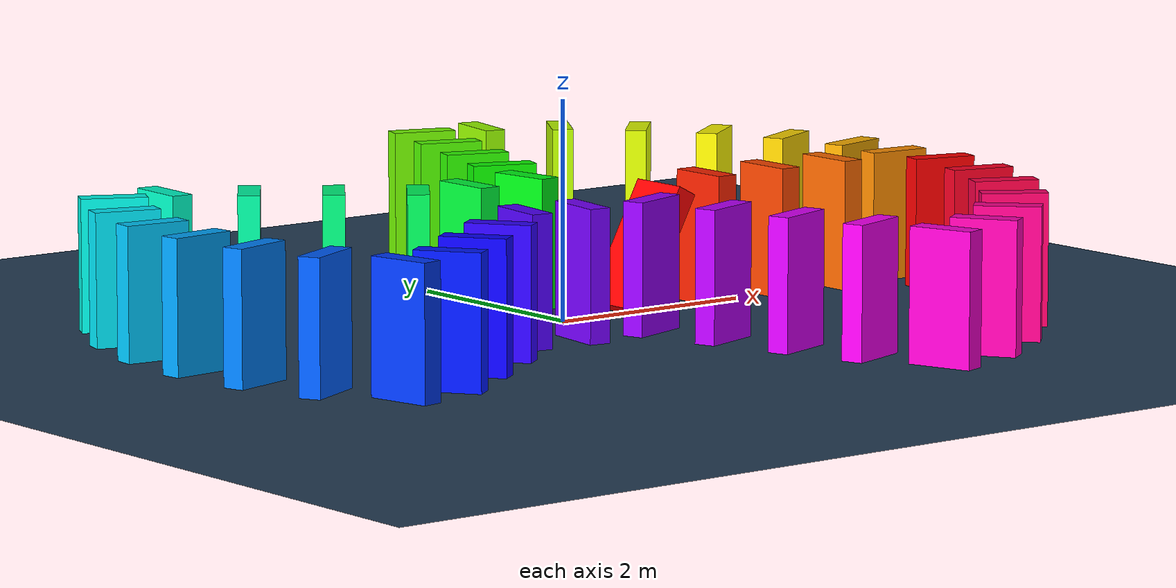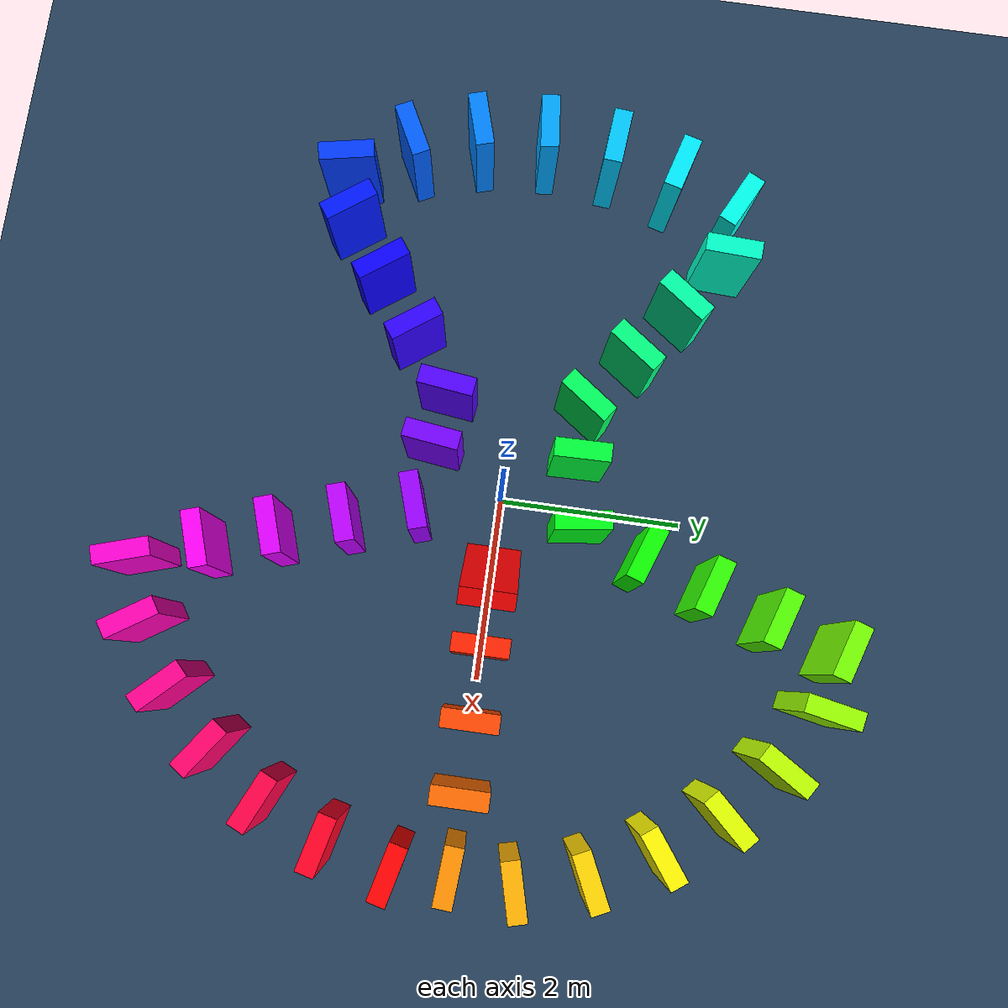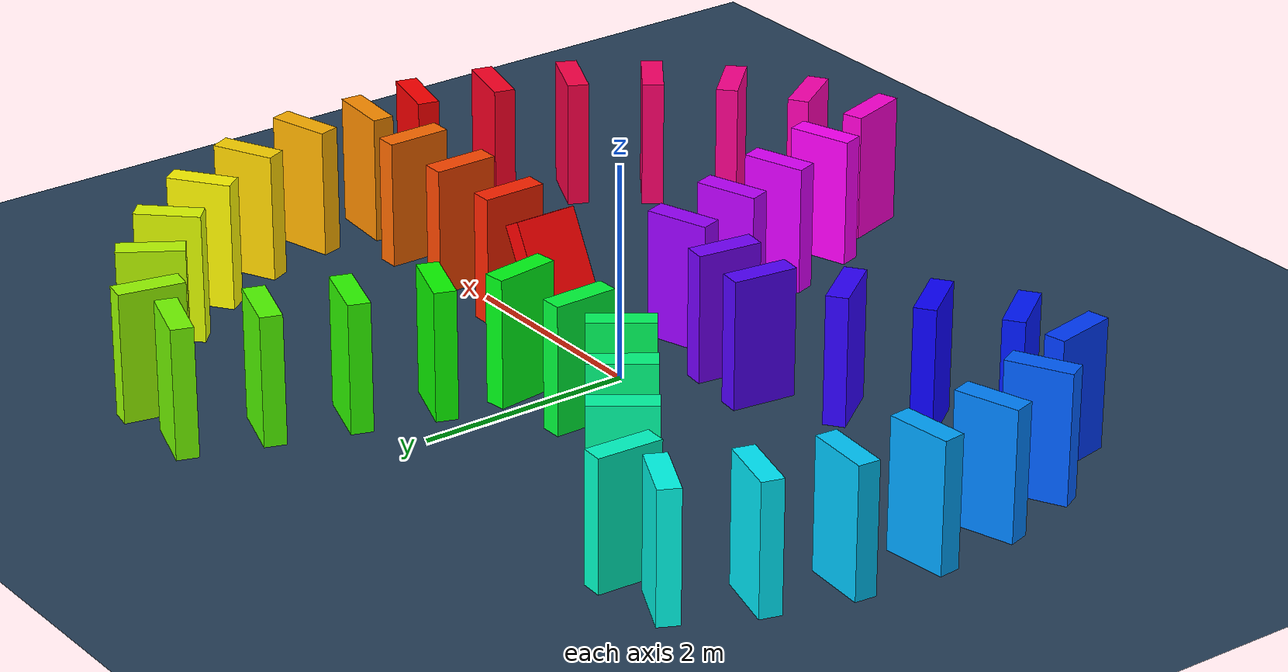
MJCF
<mujoco>
  <visual>
    <headlight diffuse="0.6 0.6 0.6" ambient="0.1 0.1 0.1" specular="0 0 0"/>
    <rgba haze="0.15 0.25 0.35 1"/>
    <global azimuth="120" elevation="-20"/>
  </visual>
  <asset>
    <texture type="skybox" builtin="gradient" rgb1="0.3 0.5 0.7" rgb2="0 0 0" width="512" height="3072"/>
    <texture type="2d" name="groundplane" builtin="checker" mark="edge" rgb1="0.2 0.3 0.4" rgb2="0.1 0.2 0.3" markrgb="0.8 0.8 0.8" width="300" height="300"/>
    <material name="groundplane" texture="groundplane" texuniform="true" texrepeat="5 5" reflectance="0.2"/>
  </asset>
  <worldbody>
    <light pos="0 0 1.5" dir="0 0 -1" directional="true"/>
    <geom name="floor" size="0 0 0.05" type="plane" material="groundplane"/>
    <body name="trigger" pos="0.9000 0.0000 0.5767" euler="0 28.0 0.0">
      <geom type="box" size="0.1000 0.3000 0.6000" rgba="1.000 0.000 0.000 1"/>
      <freejoint/>
    </body>
    <body name="domino_001" pos="1.6500 0.0000 0.6000" euler="0 0.0 0.0">
      <geom type="box" size="0.1000 0.3000 0.6000" rgba="1.000 0.140 0.000 1"/>
      <freejoint/>
    </body>
    <body name="domino_002" pos="2.4000 0.0000 0.6000" euler="0 0.0 0.0">
      <geom type="box" size="0.1000 0.3000 0.6000" rgba="1.000 0.279 0.000 1"/>
      <freejoint/>
    </body>
    <body name="domino_003" pos="3.1500 0.0000 0.6000" euler="0 0.0 0.0">
      <geom type="box" size="0.1000 0.3000 0.6000" rgba="1.000 0.419 0.000 1"/>
      <freejoint/>
    </body>
    <body name="domino_004" pos="3.9000 0.0000 0.6000" euler="0 0.0 85.8">
      <geom type="box" size="0.1000 0.3000 0.6000" rgba="1.000 0.558 0.000 1"/>
      <freejoint/>
    </body>
    <body name="domino_005" pos="3.9473 0.6471 0.6000" euler="0 0.0 104.7">
      <geom type="box" size="0.1000 0.3000 0.6000" rgba="1.000 0.698 0.000 1"/>
      <freejoint/>
    </body>
    <body name="domino_006" pos="3.7575 1.3716 0.6000" euler="0 0.0 115.4">
      <geom type="box" size="0.1000 0.3000 0.6000" rgba="1.000 0.837 0.000 1"/>
      <freejoint/>
    </body>
    <body name="domino_007" pos="3.4360 2.0480 0.6000" euler="0 0.0 126.2">
      <geom type="box" size="0.1000 0.3000 0.6000" rgba="1.000 0.977 0.000 1"/>
      <freejoint/>
    </body>
    <body name="domino_008" pos="2.9940 2.6525 0.6000" euler="0 0.0 136.9">
      <geom type="box" size="0.1000 0.3000 0.6000" rgba="0.884 1.000 0.000 1"/>
      <freejoint/>
    </body>
    <body name="domino_009" pos="2.4471 3.1641 0.6000" euler="0 0.0 147.7">
      <geom type="box" size="0.1000 0.3000 0.6000" rgba="0.744 1.000 0.000 1"/>
      <freejoint/>
    </body>
    <body name="domino_010" pos="1.8144 3.5648 0.6000" euler="0 0.0 168.8">
      <geom type="box" size="0.1000 0.3000 0.6000" rgba="0.605 1.000 0.000 1"/>
      <freejoint/>
    </body>
    <body name="domino_011" pos="1.1979 3.6868 0.6000" euler="0 0.0 -108.0">
      <geom type="box" size="0.1000 0.3000 0.6000" rgba="0.465 1.000 0.000 1"/>
      <freejoint/>
    </body>
    <body name="domino_012" pos="0.9662 2.9735 0.6000" euler="0 0.0 -108.0">
      <geom type="box" size="0.1000 0.3000 0.6000" rgba="0.326 1.000 0.000 1"/>
      <freejoint/>
    </body>
    <body name="domino_013" pos="0.7344 2.2602 0.6000" euler="0 0.0 -108.0">
      <geom type="box" size="0.1000 0.3000 0.6000" rgba="0.186 1.000 0.000 1"/>
      <freejoint/>
    </body>
    <body name="domino_014" pos="0.5026 1.5469 0.6000" euler="0 0.0 -109.8">
      <geom type="box" size="0.1000 0.3000 0.6000" rgba="0.047 1.000 0.000 1"/>
      <freejoint/>
    </body>
    <body name="domino_015" pos="0.2557 0.8629 0.6000" euler="0 0.0 -172.6">
      <geom type="box" size="0.1000 0.3000 0.6000" rgba="0.000 1.000 0.093 1"/>
      <freejoint/>
    </body>
    <body name="domino_016" pos="-0.4668 0.7695 0.6000" euler="0 0.0 -179.0">
      <geom type="box" size="0.1000 0.3000 0.6000" rgba="0.000 1.000 0.232 1"/>
      <freejoint/>
    </body>
    <body name="domino_017" pos="-1.0456 0.7597 0.6000" euler="0 0.0 144.0">
      <geom type="box" size="0.1000 0.3000 0.6000" rgba="0.000 1.000 0.372 1"/>
      <freejoint/>
    </body>
    <body name="domino_018" pos="-1.6524 1.2005 0.6000" euler="0 0.0 144.0">
      <geom type="box" size="0.1000 0.3000 0.6000" rgba="0.000 1.000 0.511 1"/>
      <freejoint/>
    </body>
    <body name="domino_019" pos="-2.2592 1.6414 0.6000" euler="0 0.0 144.0">
      <geom type="box" size="0.1000 0.3000 0.6000" rgba="0.000 1.000 0.651 1"/>
      <freejoint/>
    </body>
    <body name="domino_020" pos="-2.8659 2.0822 0.6000" euler="0 0.0 177.2">
      <geom type="box" size="0.1000 0.3000 0.6000" rgba="0.000 1.000 0.790 1"/>
      <freejoint/>
    </body>
    <body name="domino_021" pos="-3.3992 2.1084 0.6000" euler="0 0.0 -116.4">
      <geom type="box" size="0.1000 0.3000 0.6000" rgba="0.000 1.000 0.930 1"/>
      <freejoint/>
    </body>
    <body name="domino_022" pos="-3.7326 1.4379 0.6000" euler="0 0.0 -105.7">
      <geom type="box" size="0.1000 0.3000 0.6000" rgba="0.000 0.931 1.000 1"/>
      <freejoint/>
    </body>
    <body name="domino_023" pos="-3.9352 0.7169 0.6000" euler="0 0.0 -95.0">
      <geom type="box" size="0.1000 0.3000 0.6000" rgba="0.000 0.791 1.000 1"/>
      <freejoint/>
    </body>
    <body name="domino_024" pos="-3.9999 -0.0292 0.6000" euler="0 0.0 -84.2">
      <geom type="box" size="0.1000 0.3000 0.6000" rgba="0.000 0.652 1.000 1"/>
      <freejoint/>
    </body>
    <body name="domino_025" pos="-3.9243 -0.7743 0.6000" euler="0 0.0 -73.5">
      <geom type="box" size="0.1000 0.3000 0.6000" rgba="0.000 0.512 1.000 1"/>
      <freejoint/>
    </body>
    <body name="domino_026" pos="-3.7112 -1.4922 0.6000" euler="0 0.0 -62.7">
      <geom type="box" size="0.1000 0.3000 0.6000" rgba="0.000 0.373 1.000 1"/>
      <freejoint/>
    </body>
    <body name="domino_027" pos="-3.3680 -2.1579 0.6000" euler="0 0.0 11.3">
      <geom type="box" size="0.1000 0.3000 0.6000" rgba="0.000 0.233 1.000 1"/>
      <freejoint/>
    </body>
    <body name="domino_028" pos="-2.8187 -2.0479 0.6000" euler="0 0.0 36.0">
      <geom type="box" size="0.1000 0.3000 0.6000" rgba="0.000 0.094 1.000 1"/>
      <freejoint/>
    </body>
    <body name="domino_029" pos="-2.2119 -1.6070 0.6000" euler="0 0.0 36.0">
      <geom type="box" size="0.1000 0.3000 0.6000" rgba="0.046 0.000 1.000 1"/>
      <freejoint/>
    </body>
    <body name="domino_030" pos="-1.6051 -1.1662 0.6000" euler="0 0.0 36.0">
      <geom type="box" size="0.1000 0.3000 0.6000" rgba="0.185 0.000 1.000 1"/>
      <freejoint/>
    </body>
    <body name="domino_031" pos="-0.9984 -0.7254 0.6000" euler="0 0.0 -7.1">
      <geom type="box" size="0.1000 0.3000 0.6000" rgba="0.325 0.000 1.000 1"/>
      <freejoint/>
    </body>
    <body name="domino_032" pos="-0.4159 -0.7982 0.6000" euler="0 0.0 -7.4">
      <geom type="box" size="0.1000 0.3000 0.6000" rgba="0.464 0.000 1.000 1"/>
      <freejoint/>
    </body>
    <body name="domino_033" pos="0.2889 -0.8892 0.6000" euler="0 0.0 -72.0">
      <geom type="box" size="0.1000 0.3000 0.6000" rgba="0.604 0.000 1.000 1"/>
      <freejoint/>
    </body>
    <body name="domino_034" pos="0.5207 -1.6025 0.6000" euler="0 0.0 -72.0">
      <geom type="box" size="0.1000 0.3000 0.6000" rgba="0.743 0.000 1.000 1"/>
      <freejoint/>
    </body>
    <body name="domino_035" pos="0.7524 -2.3158 0.6000" euler="0 0.0 -72.0">
      <geom type="box" size="0.1000 0.3000 0.6000" rgba="0.883 0.000 1.000 1"/>
      <freejoint/>
    </body>
    <body name="domino_036" pos="0.9842 -3.0291 0.6000" euler="0 0.0 -72.0">
      <geom type="box" size="0.1000 0.3000 0.6000" rgba="1.000 0.000 0.978 1"/>
      <freejoint/>
    </body>
    <body name="domino_037" pos="1.2160 -3.7424 0.6000" euler="0 0.0 17.5">
      <geom type="box" size="0.1000 0.3000 0.6000" rgba="1.000 0.000 0.838 1"/>
      <freejoint/>
    </body>
    <body name="domino_038" pos="1.8662 -3.5380 0.6000" euler="0 0.0 33.2">
      <geom type="box" size="0.1000 0.3000 0.6000" rgba="1.000 0.000 0.699 1"/>
      <freejoint/>
    </body>
    <body name="domino_039" pos="2.4930 -3.1281 0.6000" euler="0 0.0 43.9">
      <geom type="box" size="0.1000 0.3000 0.6000" rgba="1.000 0.000 0.559 1"/>
      <freejoint/>
    </body>
    <body name="domino_040" pos="3.0324 -2.6085 0.6000" euler="0 0.0 54.7">
      <geom type="box" size="0.1000 0.3000 0.6000" rgba="1.000 0.000 0.420 1"/>
      <freejoint/>
    </body>
    <body name="domino_041" pos="3.4655 -1.9976 0.6000" euler="0 0.0 65.4">
      <geom type="box" size="0.1000 0.3000 0.6000" rgba="1.000 0.000 0.280 1"/>
      <freejoint/>
    </body>
    <body name="domino_042" pos="3.7771 -1.3166 0.6000" euler="0 0.0 76.2">
      <geom type="box" size="0.1000 0.3000 0.6000" rgba="1.000 0.000 0.141 1"/>
      <freejoint/>
    </body>
    <body name="domino_043" pos="3.9563 -0.5894 0.6000" euler="0 0.0 76.2">
      <geom type="box" size="0.1000 0.3000 0.6000" rgba="1.000 0.000 0.001 1"/>
      <freejoint/>
    </body>
  </worldbody>
</mujoco>
